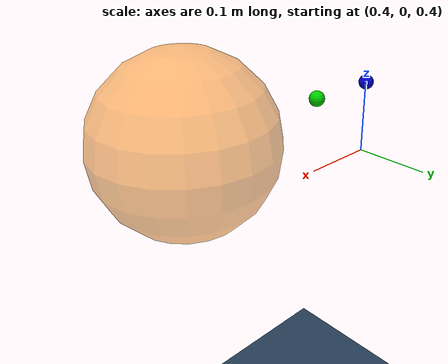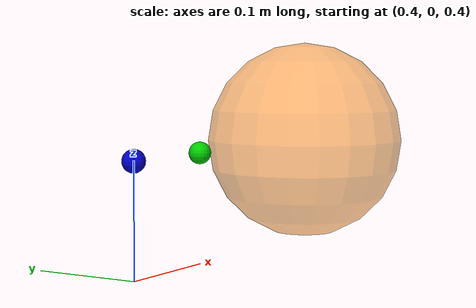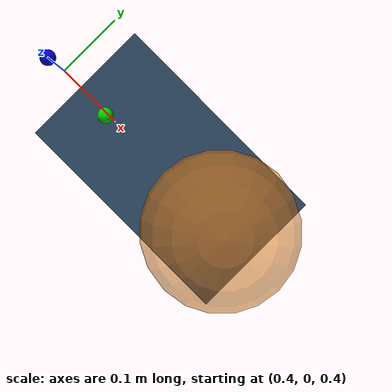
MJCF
<mujoco model="particle_collision_scene">
  <include file="particle_collision.xml"/>

  <statistic center="0 0 0" extent="0.9"/>

  <visual>
    <headlight diffuse="0.6 0.6 0.6" ambient="0.3 0.3 0.3" specular="0 0 0"/>
    <rgba haze="0.15 0.25 0.35 1"/>
  </visual>

  <asset>
    <texture type="skybox" builtin="gradient" rgb1="0.3 0.5 0.7" rgb2="0 0 0" width="512" height="3072"/>
    <texture type="2d" name="groundplane" builtin="checker" mark="edge" rgb1="0.2 0.3 0.4" rgb2="0.1 0.2 0.3"
      markrgb="0.8 0.8 0.8" width="300" height="300"/>
    <material name="groundplane" texture="groundplane" texuniform="true" texrepeat="5 5" reflectance="0.2"/>
    <!-- Blue particle -->
    <material name="particle" rgba="0.0 0.0 0.8 1"/>
    <!-- Orange obstacle -->
    <material name="obstacle" rgba="1.0 0.5 0.0 0.5"/>
    <!-- Green target -->
    <material name="target" rgba="0.0 0.8 0.0 1"/>
  </asset>

  <worldbody>
    <light pos="0 0 1"/>
    <geom name="floor" size="0 0 .125" type="plane" material="groundplane"/>
  </worldbody>
</mujoco>

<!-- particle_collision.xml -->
<mujoco model="particle3d">
  <option timestep="0.01" iterations="1" ls_iterations="4">
    <flag contact="disable" eulerdamp="disable"/>
  </option>

  <default>
    <joint type="hinge" axis="0 0 1" limited="true" range="-.29 .29" damping="0" />
    <motor gear=".1" ctrlrange="-1 1" ctrllimited="true" />
    <default class="translation">
      <position kp="20" kv="5" ctrlrange="-1 1"/>
    </default>
  </default>

  <worldbody>
    <site name="reference" pos="0 0 0" size="0.01" rgba="0 0 0 0.0"/>

      <!-- Particle -->
    <body name="particle" pos="0.4 0.0 0.5" gravcomp="1">
        <joint type="free"/>
        <geom type="sphere" size="0.01" material="particle" mass=".3"/>
        <site name="particle" type="sphere" size="0.02" rgba="0 0 0 0"/>
    </body>

    <!-- Mocap obstacle -->
    <body name="obstacle" mocap="true" pos="0.7 0 0.5" gravcomp="1">
        <geom type="sphere" size="0.1" material="obstacle"/>
    </body>

    <!-- Fixed target -->
    <body name="target" mocap="true" pos="0.5 0.0 0.5" gravcomp="1">
        <geom type="sphere" size="0.01" material="target"/>
        <site name="target" type="sphere" size="0.02" rgba="0 0 0 0"/>
    </body>
  </worldbody>

  <actuator>
    <position name="x" site="particle" refsite="reference" gear="1 0 0 0 0 0" class="translation"/>
    <position name="y" site="particle" refsite="reference" gear="0 1 0 0 0 0" class="translation"/>
    <position name="z" site="particle" refsite="reference" gear="0 0 1 0 0 0" class="translation"/>
  </actuator>
</mujoco>
